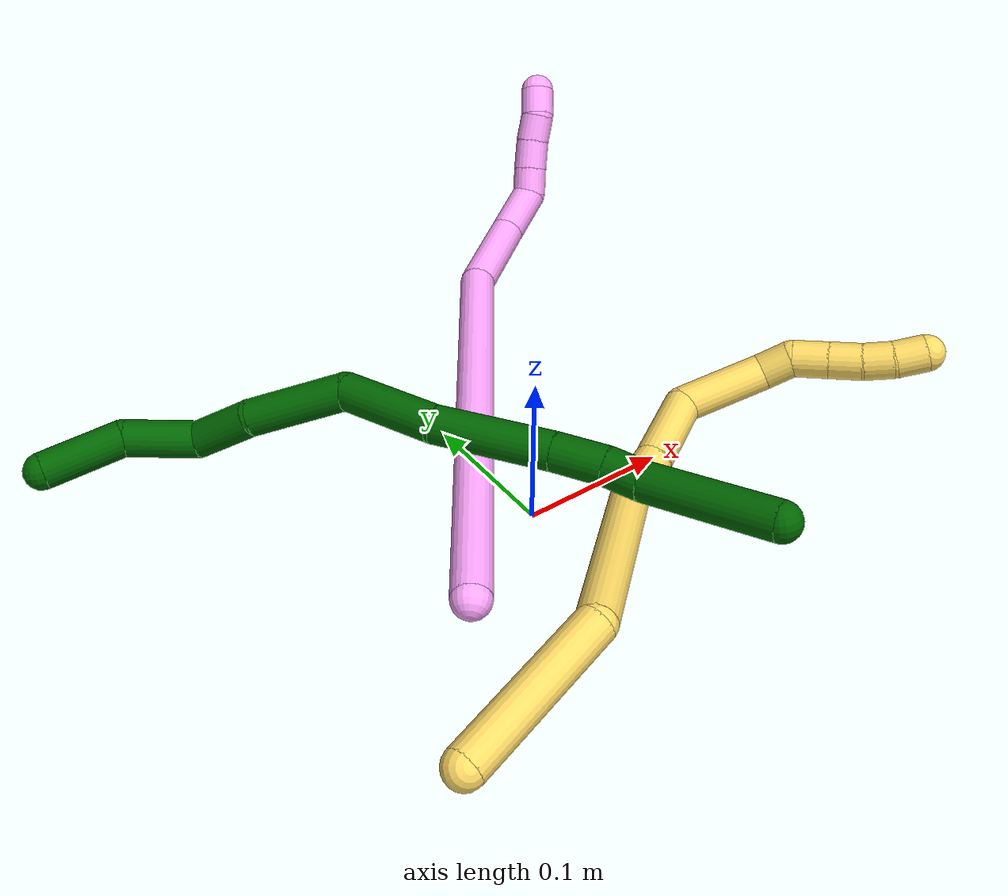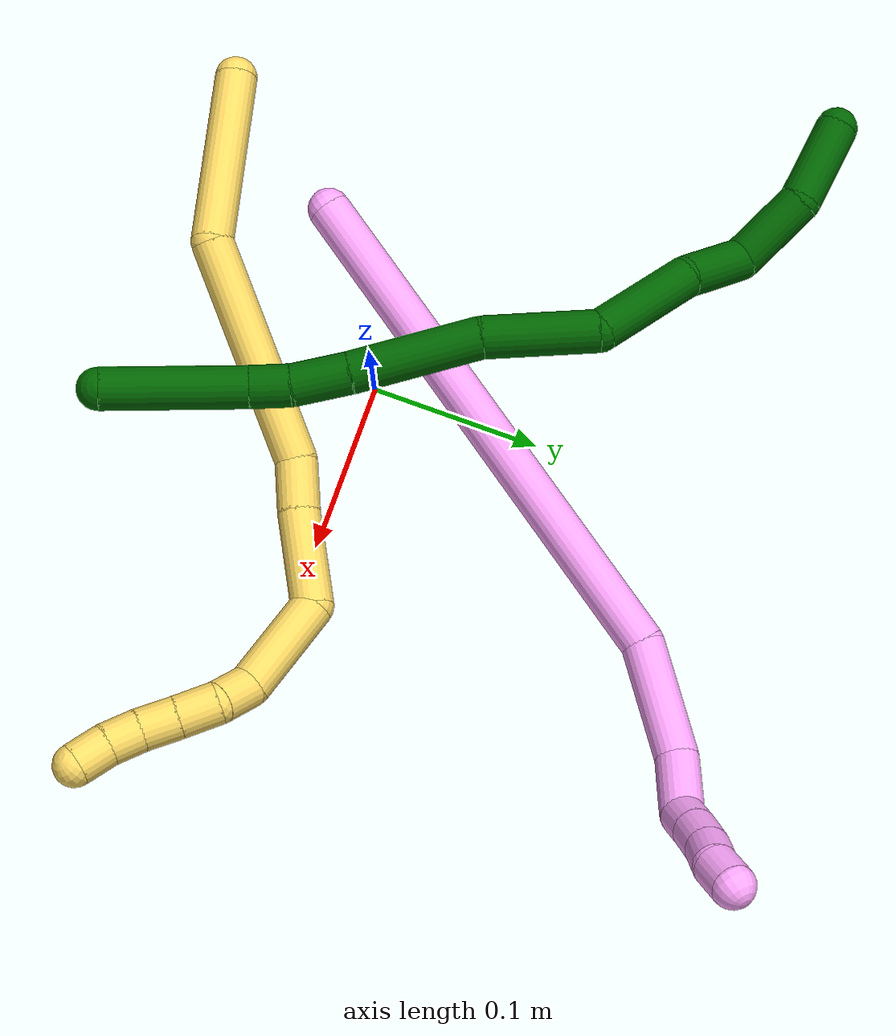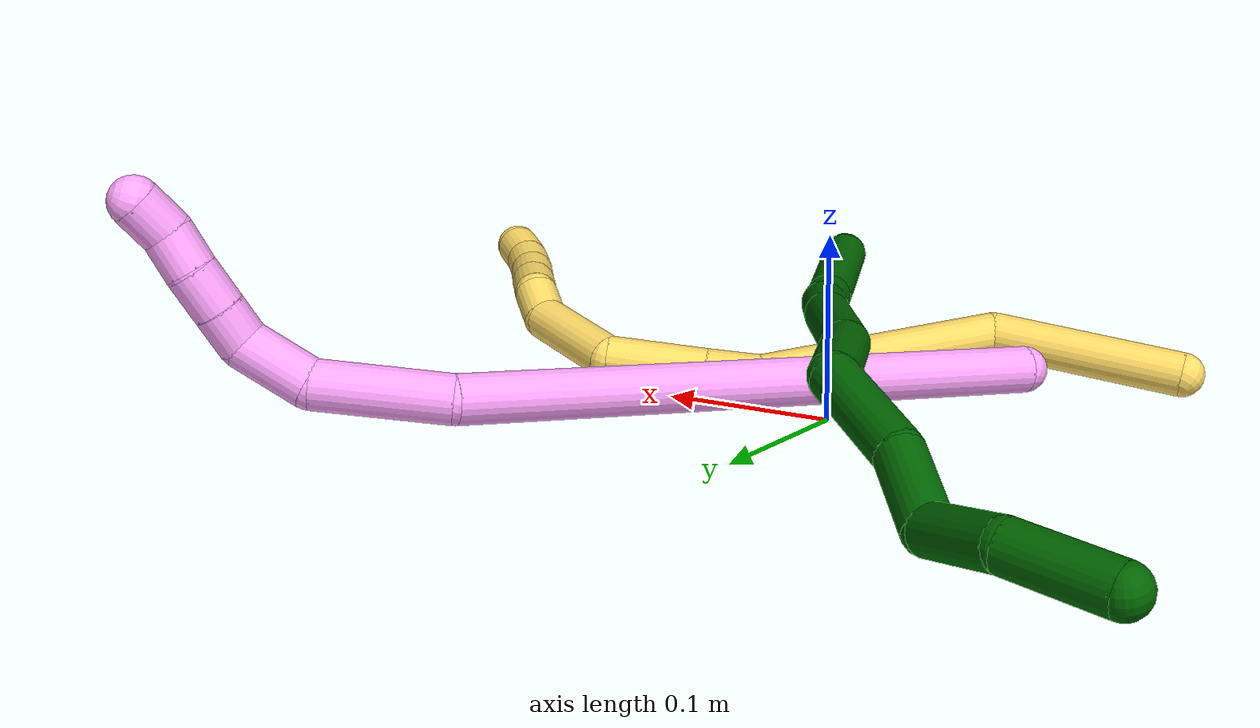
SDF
<sdf version="1.7">
 <world name="default">
  <model name="photoneo_s_sensor">
   <static>1</static>
   <pose>0 0 2 1.57079 1.57079 3.14159</pose>
   <link name="link">
    <inertial><mass>0.1</mass></inertial>
    <sensor name="sensor" type="depth">
     <update_rate>30</update_rate>
     <camera>
      <horizontal_fov>1.22</horizontal_fov>
      <image><width>1920</width><height>1200</height><format>B8G8R8</format></image>
      <clip><near>0.1</near><far>4</far></clip>
      <depth_camera><output>points</output></depth_camera>
     </camera>
     <plugin name="camera_plugin" filename="libgazebo_ros_depth_camera.so">
      <baseline>0.2</baseline>
      <alwaysOn>1</alwaysOn>
      <updateRate>0.0</updateRate>
      <cameraName>camera_ir</cameraName>
      <imageTopicName>/camera/color/image_raw</imageTopicName>
      <cameraInfoTopicName>/camera/color/camera_info</cameraInfoTopicName>
      <depthImageTopicName>/camera/depth/image_raw</depthImageTopicName>
      <depthImageCameraInfoTopicName>/camera/depth/camera_info</depthImageCameraInfoTopicName>
      <pointCloudTopicName>/camera/depth/points</pointCloudTopicName>
      <frameName>fr_optical</frameName>
      <pointCloudCutoff>0.1</pointCloudCutoff>
      <pointCloudCutoffMax>2.0</pointCloudCutoffMax>
      <distortionK1>0</distortionK1>
      <distortionK2>0</distortionK2>
      <distortionK3>0</distortionK3>
      <distortionT1>0</distortionT1>
      <distortionT2>0</distortionT2>
      <CxPrime>0</CxPrime>
      <Cx>0</Cx>
      <Cy>0</Cy>
      <focalLength>0</focalLength>
      <hackBaseline>0</hackBaseline>
     </plugin>
    </sensor>
   </link>
  </model>
  <model name="bin">
   <static>1</static>
   <link name="bottom">
    <collision name="collision-bottom">
     <pose>0 0 -0.01 0 -0 0</pose>
     <geometry><box><size>0.8 0.6 0.02</size></box></geometry>
     <surface>
      <friction><ode><mu>100</mu><mu2>100</mu2></ode></friction>
      <contact><collide_bitmask>65535</collide_bitmask></contact>
     </surface>
    </collision>
   </link>
   <link name="west_wall">
    <collision name="collision-west_wall">
     <pose>-0.41 0 0.1 0 -0 0</pose>
     <geometry><box><size>0.02 0.6 0.2</size></box></geometry>
     <surface>
      <friction><ode><mu>100</mu><mu2>100</mu2></ode></friction>
      <contact><collide_bitmask>65535</collide_bitmask></contact>
     </surface>
    </collision>
   </link>
   <link name="east_wall">
    <collision name="collision-east_wall">
     <pose>0.41 0 0.1 0 -0 0</pose>
     <geometry><box><size>0.02 0.6 0.2</size></box></geometry>
     <surface>
      <friction><ode><mu>100</mu><mu2>100</mu2></ode></friction>
      <contact><collide_bitmask>65535</collide_bitmask></contact>
     </surface>
    </collision>
   </link>
   <link name="south_wall">
    <collision name="collision-south_wall">
     <pose>0 -0.31 0.1 0 -0 0</pose>
     <geometry><box><size>0.8 0.02 0.2</size></box></geometry>
     <surface>
      <friction><ode><mu>100</mu><mu2>100</mu2></ode></friction>
      <contact><collide_bitmask>65535</collide_bitmask></contact>
     </surface>
    </collision>
   </link>
   <link name="north_wall">
    <collision name="collision-north_wall">
     <pose>0 0.31 0.1 0 -0 0</pose>
     <geometry><box><size>0.8 0.02 0.2</size></box></geometry>
     <surface>
      <friction><ode><mu>100</mu><mu2>100</mu2></ode></friction>
      <contact><collide_bitmask>65535</collide_bitmask></contact>
     </surface>
    </collision>
   </link>
  </model>
  <model name="4">
   <static>0</static>
   <link name="4">
    <collision name="collision-cylinder-e_1_1_4">
     <pose>0.019927 0.047858 0.147684 -0.313379 0.127658 -0.020195</pose>
     <geometry><cylinder><radius>0.0125</radius><length>0.313037</length></cylinder></geometry>
     <surface>
      <friction><ode><mu>1.16</mu><mu2>1.16</mu2><slip1>0</slip1><slip2>0</slip2></ode></friction>
      <contact><ode><kp>1e+06</kp><kd>1</kd><max_vel>0</max_vel><min_depth>0.001</min_depth></ode></contact>
     </surface>
    </collision>
    <visual name="visual-cylinder-e_1_1_4">
     <pose>0.019927 0.047858 0.147684 -0.313379 0.127658 -0.020195</pose>
     <geometry><cylinder><radius>0.0125</radius><length>0.313037</length></cylinder></geometry>
     <material><ambient>1 0.65098 0.996078 1</ambient></material>
    </visual>
    <collision name="collision-cylinder-e_2_4_5">
     <pose>0.051668 0.096929 0.326991 -0.038335 0.357299 -0.006923</pose>
     <geometry><cylinder><radius>0.0125</radius><length>0.06756</length></cylinder></geometry>
     <surface>
      <friction><ode><mu>1.16</mu><mu2>1.16</mu2><slip1>0</slip1><slip2>0</slip2></ode></friction>
      <contact><ode><kp>1e+06</kp><kd>1</kd><max_vel>0</max_vel><min_depth>0.001</min_depth></ode></contact>
     </surface>
    </collision>
    <visual name="visual-cylinder-e_2_4_5">
     <pose>0.051668 0.096929 0.326991 -0.038335 0.357299 -0.006923</pose>
     <geometry><cylinder><radius>0.0125</radius><length>0.06756</length></cylinder></geometry>
     <material><ambient>1 0.65098 0.996078 1</ambient></material>
    </visual>
    <collision name="collision-cylinder-e_3_5_6">
     <pose>0.067777 0.090882 0.375006 0.416909 0.235115 0.049953</pose>
     <geometry><cylinder><radius>0.0125</radius><length>0.036869</length></cylinder></geometry>
     <surface>
      <friction><ode><mu>1.16</mu><mu2>1.16</mu2><slip1>0</slip1><slip2>0</slip2></ode></friction>
      <contact><ode><kp>1e+06</kp><kd>1</kd><max_vel>0</max_vel><min_depth>0.001</min_depth></ode></contact>
     </surface>
    </collision>
    <visual name="visual-cylinder-e_3_5_6">
     <pose>0.067777 0.090882 0.375006 0.416909 0.235115 0.049953</pose>
     <geometry><cylinder><radius>0.0125</radius><length>0.036869</length></cylinder></geometry>
     <material><ambient>1 0.65098 0.996078 1</ambient></material>
    </visual>
    <collision name="collision-cylinder-e_4_6_7">
     <pose>0.068544 0.07868 0.399373 0.554907 -0.359551 -0.103425</pose>
     <geometry><cylinder><radius>0.0125</radius><length>0.020047</length></cylinder></geometry>
     <surface>
      <friction><ode><mu>1.16</mu><mu2>1.16</mu2><slip1>0</slip1><slip2>0</slip2></ode></friction>
      <contact><ode><kp>1e+06</kp><kd>1</kd><max_vel>0</max_vel><min_depth>0.001</min_depth></ode></contact>
     </surface>
    </collision>
    <visual name="visual-cylinder-e_4_6_7">
     <pose>0.068544 0.07868 0.399373 0.554907 -0.359551 -0.103425</pose>
     <geometry><cylinder><radius>0.0125</radius><length>0.020047</length></cylinder></geometry>
     <material><ambient>1 0.65098 0.996078 1</ambient></material>
    </visual>
    <collision name="collision-cylinder-e_5_7_8">
     <pose>0.061584 0.068122 0.416008 0.575177 -0.321149 -0.095744</pose>
     <geometry><cylinder><radius>0.0125</radius><length>0.021755</length></cylinder></geometry>
     <surface>
      <friction><ode><mu>1.16</mu><mu2>1.16</mu2><slip1>0</slip1><slip2>0</slip2></ode></friction>
      <contact><ode><kp>1e+06</kp><kd>1</kd><max_vel>0</max_vel><min_depth>0.001</min_depth></ode></contact>
     </surface>
    </collision>
    <visual name="visual-cylinder-e_5_7_8">
     <pose>0.061584 0.068122 0.416008 0.575177 -0.321149 -0.095744</pose>
     <geometry><cylinder><radius>0.0125</radius><length>0.021755</length></cylinder></geometry>
     <material><ambient>1 0.65098 0.996078 1</ambient></material>
    </visual>
    <collision name="collision-cylinder-e_6_8_9">
     <pose>0.055584 0.056301 0.432296 0.682983 -0.255249 -0.091152</pose>
     <geometry><cylinder><radius>0.0125</radius><length>0.020327</length></cylinder></geometry>
     <surface>
      <friction><ode><mu>1.16</mu><mu2>1.16</mu2><slip1>0</slip1><slip2>0</slip2></ode></friction>
      <contact><ode><kp>1e+06</kp><kd>1</kd><max_vel>0</max_vel><min_depth>0.001</min_depth></ode></contact>
     </surface>
    </collision>
    <visual name="visual-cylinder-e_6_8_9">
     <pose>0.055584 0.056301 0.432296 0.682983 -0.255249 -0.091152</pose>
     <geometry><cylinder><radius>0.0125</radius><length>0.020327</length></cylinder></geometry>
     <material><ambient>1 0.65098 0.996078 1</ambient></material>
    </visual>
    <collision name="collision-cylinder-e_7_9_2">
     <pose>0.049908 0.046593 0.448989 0.368672 -0.309781 -0.058209</pose>
     <geometry><cylinder><radius>0.0125</radius><length>0.020406</length></cylinder></geometry>
     <surface>
      <friction><ode><mu>1.16</mu><mu2>1.16</mu2><slip1>0</slip1><slip2>0</slip2></ode></friction>
      <contact><ode><kp>1e+06</kp><kd>1</kd><max_vel>0</max_vel><min_depth>0.001</min_depth></ode></contact>
     </surface>
    </collision>
    <visual name="visual-cylinder-e_7_9_2">
     <pose>0.049908 0.046593 0.448989 0.368672 -0.309781 -0.058209</pose>
     <geometry><cylinder><radius>0.0125</radius><length>0.020406</length></cylinder></geometry>
     <material><ambient>1 0.65098 0.996078 1</ambient></material>
    </visual>
    <collision name="collision-sphere-2">
     <pose>0.046797 0.043091 0.458054 0 -0 0</pose>
     <geometry><sphere><radius>0.0125</radius></sphere></geometry>
     <surface>
      <friction><ode><mu>1.16</mu><mu2>1.16</mu2><slip1>0</slip1><slip2>0</slip2></ode></friction>
      <contact><ode><kp>1e+06</kp><kd>1</kd><max_vel>0</max_vel><min_depth>0.001</min_depth></ode></contact>
     </surface>
    </collision>
    <visual name="visual-sphere-2">
     <pose>0.046797 0.043091 0.458054 0 -0 0</pose>
     <geometry><sphere><radius>0.0125</radius></sphere></geometry>
     <material><ambient>1 0.65098 0.996078 1</ambient></material>
    </visual>
    <collision name="collision-sphere-9">
     <pose>0.053018 0.050095 0.439924 0 -0 0</pose>
     <geometry><sphere><radius>0.0125</radius></sphere></geometry>
     <surface>
      <friction><ode><mu>1.16</mu><mu2>1.16</mu2><slip1>0</slip1><slip2>0</slip2></ode></friction>
      <contact><ode><kp>1e+06</kp><kd>1</kd><max_vel>0</max_vel><min_depth>0.001</min_depth></ode></contact>
     </surface>
    </collision>
    <visual name="visual-sphere-9">
     <pose>0.053018 0.050095 0.439924 0 -0 0</pose>
     <geometry><sphere><radius>0.0125</radius></sphere></geometry>
     <material><ambient>1 0.65098 0.996078 1</ambient></material>
    </visual>
    <collision name="collision-sphere-4">
     <pose>0.039853 0.095716 0.295368 0 -0 0</pose>
     <geometry><sphere><radius>0.0125</radius></sphere></geometry>
     <surface>
      <friction><ode><mu>1.16</mu><mu2>1.16</mu2><slip1>0</slip1><slip2>0</slip2></ode></friction>
      <contact><ode><kp>1e+06</kp><kd>1</kd><max_vel>0</max_vel><min_depth>0.001</min_depth></ode></contact>
     </surface>
    </collision>
    <visual name="visual-sphere-4">
     <pose>0.039853 0.095716 0.295368 0 -0 0</pose>
     <geometry><sphere><radius>0.0125</radius></sphere></geometry>
     <material><ambient>1 0.65098 0.996078 1</ambient></material>
    </visual>
    <collision name="collision-sphere-1">
     <geometry><sphere><radius>0.0125</radius></sphere></geometry>
     <surface>
      <friction><ode><mu>1.16</mu><mu2>1.16</mu2><slip1>0</slip1><slip2>0</slip2></ode></friction>
      <contact><ode><kp>1e+06</kp><kd>1</kd><max_vel>0</max_vel><min_depth>0.001</min_depth></ode></contact>
     </surface>
    </collision>
    <visual name="visual-sphere-1">
     <geometry><sphere><radius>0.0125</radius></sphere></geometry>
     <material><ambient>1 0.65098 0.996078 1</ambient></material>
    </visual>
    <collision name="collision-sphere-8">
     <pose>0.05815 0.062507 0.424668 0 -0 0</pose>
     <geometry><sphere><radius>0.0125</radius></sphere></geometry>
     <surface>
      <friction><ode><mu>1.16</mu><mu2>1.16</mu2><slip1>0</slip1><slip2>0</slip2></ode></friction>
      <contact><ode><kp>1e+06</kp><kd>1</kd><max_vel>0</max_vel><min_depth>0.001</min_depth></ode></contact>
     </surface>
    </collision>
    <visual name="visual-sphere-8">
     <pose>0.05815 0.062507 0.424668 0 -0 0</pose>
     <geometry><sphere><radius>0.0125</radius></sphere></geometry>
     <material><ambient>1 0.65098 0.996078 1</ambient></material>
    </visual>
    <collision name="collision-sphere-5">
     <pose>0.063482 0.098142 0.358614 0 -0 0</pose>
     <geometry><sphere><radius>0.0125</radius></sphere></geometry>
     <surface>
      <friction><ode><mu>1.16</mu><mu2>1.16</mu2><slip1>0</slip1><slip2>0</slip2></ode></friction>
      <contact><ode><kp>1e+06</kp><kd>1</kd><max_vel>0</max_vel><min_depth>0.001</min_depth></ode></contact>
     </surface>
    </collision>
    <visual name="visual-sphere-5">
     <pose>0.063482 0.098142 0.358614 0 -0 0</pose>
     <geometry><sphere><radius>0.0125</radius></sphere></geometry>
     <material><ambient>1 0.65098 0.996078 1</ambient></material>
    </visual>
    <collision name="collision-sphere-6">
     <pose>0.072071 0.083623 0.391398 0 -0 0</pose>
     <geometry><sphere><radius>0.0125</radius></sphere></geometry>
     <surface>
      <friction><ode><mu>1.16</mu><mu2>1.16</mu2><slip1>0</slip1><slip2>0</slip2></ode></friction>
      <contact><ode><kp>1e+06</kp><kd>1</kd><max_vel>0</max_vel><min_depth>0.001</min_depth></ode></contact>
     </surface>
    </collision>
    <visual name="visual-sphere-6">
     <pose>0.072071 0.083623 0.391398 0 -0 0</pose>
     <geometry><sphere><radius>0.0125</radius></sphere></geometry>
     <material><ambient>1 0.65098 0.996078 1</ambient></material>
    </visual>
    <collision name="collision-sphere-7">
     <pose>0.065017 0.073736 0.407347 0 -0 0</pose>
     <geometry><sphere><radius>0.0125</radius></sphere></geometry>
     <surface>
      <friction><ode><mu>1.16</mu><mu2>1.16</mu2><slip1>0</slip1><slip2>0</slip2></ode></friction>
      <contact><ode><kp>1e+06</kp><kd>1</kd><max_vel>0</max_vel><min_depth>0.001</min_depth></ode></contact>
     </surface>
    </collision>
    <visual name="visual-sphere-7">
     <pose>0.065017 0.073736 0.407347 0 -0 0</pose>
     <geometry><sphere><radius>0.0125</radius></sphere></geometry>
     <material><ambient>1 0.65098 0.996078 1</ambient></material>
    </visual>
    <inertial>
     <pose>0.034179 0.06007 0.234307 0 -0 0</pose>
     <mass>0.5</mass>
     <inertia>
      <ixx>0.002537</ixx>
      <ixy>0</ixy>
      <ixz>0</ixz>
      <iyy>0.002435</iyy>
      <iyz>0</iyz>
      <izz>-0.001082</izz>
     </inertia>
    </inertial>
   </link>
   <pose>-0.086471 -0.059831 0.027205 -1.12299 0.572987 -0.4327</pose>
  </model>
  <model name="5">
   <static>0</static>
   <link name="5">
    <collision name="collision-cylinder-e_1_1_4">
     <pose>0.038087 0.037092 0.007203 -1.37899 0.789371 -0.661629</pose>
     <geometry><cylinder><radius>0.0125</radius><length>0.1073</length></cylinder></geometry>
     <surface>
      <friction><ode><mu>1.16</mu><mu2>1.16</mu2><slip1>0</slip1><slip2>0</slip2></ode></friction>
      <contact><ode><kp>1e+06</kp><kd>1</kd><max_vel>0</max_vel><min_depth>0.001</min_depth></ode></contact>
     </surface>
    </collision>
    <visual name="visual-cylinder-e_1_1_4">
     <pose>0.038087 0.037092 0.007203 -1.37899 0.789371 -0.661629</pose>
     <geometry><cylinder><radius>0.0125</radius><length>0.1073</length></cylinder></geometry>
     <material><ambient>1 0.858824 0.4 1</ambient></material>
    </visual>
    <collision name="collision-cylinder-e_2_4_5">
     <pose>0.122944 0.10182 0.055682 -0.58999 0.75531 -0.239923</pose>
     <geometry><cylinder><radius>0.0125</radius><length>0.136454</length></cylinder></geometry>
     <surface>
      <friction><ode><mu>1.16</mu><mu2>1.16</mu2><slip1>0</slip1><slip2>0</slip2></ode></friction>
      <contact><ode><kp>1e+06</kp><kd>1</kd><max_vel>0</max_vel><min_depth>0.001</min_depth></ode></contact>
     </surface>
    </collision>
    <visual name="visual-cylinder-e_2_4_5">
     <pose>0.122944 0.10182 0.055682 -0.58999 0.75531 -0.239923</pose>
     <geometry><cylinder><radius>0.0125</radius><length>0.136454</length></cylinder></geometry>
     <material><ambient>1 0.858824 0.4 1</ambient></material>
    </visual>
    <collision name="collision-cylinder-e_3_5_6">
     <pose>0.18139 0.138782 0.101407 -1.12556 0.84636 -0.553649</pose>
     <geometry><cylinder><radius>0.0125</radius><length>0.031183</length></cylinder></geometry>
     <surface>
      <friction><ode><mu>1.16</mu><mu2>1.16</mu2><slip1>0</slip1><slip2>0</slip2></ode></friction>
      <contact><ode><kp>1e+06</kp><kd>1</kd><max_vel>0</max_vel><min_depth>0.001</min_depth></ode></contact>
     </surface>
    </collision>
    <visual name="visual-cylinder-e_3_5_6">
     <pose>0.18139 0.138782 0.101407 -1.12556 0.84636 -0.553649</pose>
     <geometry><cylinder><radius>0.0125</radius><length>0.031183</length></cylinder></geometry>
     <material><ambient>1 0.858824 0.4 1</ambient></material>
    </visual>
    <collision name="collision-cylinder-e_4_6_7">
     <pose>0.215639 0.162761 0.114413 -1.04235 0.926184 -0.558351</pose>
     <geometry><cylinder><radius>0.0125</radius><length>0.05648</length></cylinder></geometry>
     <surface>
      <friction><ode><mu>1.16</mu><mu2>1.16</mu2><slip1>0</slip1><slip2>0</slip2></ode></friction>
      <contact><ode><kp>1e+06</kp><kd>1</kd><max_vel>0</max_vel><min_depth>0.001</min_depth></ode></contact>
     </surface>
    </collision>
    <visual name="visual-cylinder-e_4_6_7">
     <pose>0.215639 0.162761 0.114413 -1.04235 0.926184 -0.558351</pose>
     <geometry><cylinder><radius>0.0125</radius><length>0.05648</length></cylinder></geometry>
     <material><ambient>1 0.858824 0.4 1</ambient></material>
    </visual>
    <collision name="collision-cylinder-e_5_7_8">
     <pose>0.250812 0.203207 0.11519 -1.86372 0.437479 -0.581503</pose>
     <geometry><cylinder><radius>0.0125</radius><length>0.05948</length></cylinder></geometry>
     <surface>
      <friction><ode><mu>1.16</mu><mu2>1.16</mu2><slip1>0</slip1><slip2>0</slip2></ode></friction>
      <contact><ode><kp>1e+06</kp><kd>1</kd><max_vel>0</max_vel><min_depth>0.001</min_depth></ode></contact>
     </surface>
    </collision>
    <visual name="visual-cylinder-e_5_7_8">
     <pose>0.250812 0.203207 0.11519 -1.86372 0.437479 -0.581503</pose>
     <geometry><cylinder><radius>0.0125</radius><length>0.05948</length></cylinder></geometry>
     <material><ambient>1 0.858824 0.4 1</ambient></material>
    </visual>
    <collision name="collision-cylinder-e_6_8_9">
     <pose>0.267107 0.23658 0.09995 -2.34823 0.334343 -0.765916</pose>
     <geometry><cylinder><radius>0.0125</radius><length>0.022521</length></cylinder></geometry>
     <surface>
      <friction><ode><mu>1.16</mu><mu2>1.16</mu2><slip1>0</slip1><slip2>0</slip2></ode></friction>
      <contact><ode><kp>1e+06</kp><kd>1</kd><max_vel>0</max_vel><min_depth>0.001</min_depth></ode></contact>
     </surface>
    </collision>
    <visual name="visual-cylinder-e_6_8_9">
     <pose>0.267107 0.23658 0.09995 -2.34823 0.334343 -0.765916</pose>
     <geometry><cylinder><radius>0.0125</radius><length>0.022521</length></cylinder></geometry>
     <material><ambient>1 0.858824 0.4 1</ambient></material>
    </visual>
    <collision name="collision-cylinder-e_7_9_10">
     <pose>0.269717 0.25439 0.086423 -2.10607 -0.090943 0.159436</pose>
     <geometry><cylinder><radius>0.0125</radius><length>0.023885</length></cylinder></geometry>
     <surface>
      <friction><ode><mu>1.16</mu><mu2>1.16</mu2><slip1>0</slip1><slip2>0</slip2></ode></friction>
      <contact><ode><kp>1e+06</kp><kd>1</kd><max_vel>0</max_vel><min_depth>0.001</min_depth></ode></contact>
     </surface>
    </collision>
    <visual name="visual-cylinder-e_7_9_10">
     <pose>0.269717 0.25439 0.086423 -2.10607 -0.090943 0.159436</pose>
     <geometry><cylinder><radius>0.0125</radius><length>0.023885</length></cylinder></geometry>
     <material><ambient>1 0.858824 0.4 1</ambient></material>
    </visual>
    <collision name="collision-cylinder-e_8_10_11">
     <pose>0.267527 0.273845 0.074606 -2.12819 -0.101368 0.182284</pose>
     <geometry><cylinder><radius>0.0125</radius><length>0.021854</length></cylinder></geometry>
     <surface>
      <friction><ode><mu>1.16</mu><mu2>1.16</mu2><slip1>0</slip1><slip2>0</slip2></ode></friction>
      <contact><ode><kp>1e+06</kp><kd>1</kd><max_vel>0</max_vel><min_depth>0.001</min_depth></ode></contact>
     </surface>
    </collision>
    <visual name="visual-cylinder-e_8_10_11">
     <pose>0.267527 0.273845 0.074606 -2.12819 -0.101368 0.182284</pose>
     <geometry><cylinder><radius>0.0125</radius><length>0.021854</length></cylinder></geometry>
     <material><ambient>1 0.858824 0.4 1</ambient></material>
    </visual>
    <collision name="collision-cylinder-e_9_11_12">
     <pose>0.266675 0.29154 0.063521 -2.13286 0.025358 -0.045934</pose>
     <geometry><cylinder><radius>0.0125</radius><length>0.020025</length></cylinder></geometry>
     <surface>
      <friction><ode><mu>1.16</mu><mu2>1.16</mu2><slip1>0</slip1><slip2>0</slip2></ode></friction>
      <contact><ode><kp>1e+06</kp><kd>1</kd><max_vel>0</max_vel><min_depth>0.001</min_depth></ode></contact>
     </surface>
    </collision>
    <visual name="visual-cylinder-e_9_11_12">
     <pose>0.266675 0.29154 0.063521 -2.13286 0.025358 -0.045934</pose>
     <geometry><cylinder><radius>0.0125</radius><length>0.020025</length></cylinder></geometry>
     <material><ambient>1 0.858824 0.4 1</ambient></material>
    </visual>
    <collision name="collision-cylinder-e_10_12_2">
     <pose>0.268943 0.308878 0.053123 -2.0896 0.194655 -0.333239</pose>
     <geometry><cylinder><radius>0.0125</radius><length>0.02082</length></cylinder></geometry>
     <surface>
      <friction><ode><mu>1.16</mu><mu2>1.16</mu2><slip1>0</slip1><slip2>0</slip2></ode></friction>
      <contact><ode><kp>1e+06</kp><kd>1</kd><max_vel>0</max_vel><min_depth>0.001</min_depth></ode></contact>
     </surface>
    </collision>
    <visual name="visual-cylinder-e_10_12_2">
     <pose>0.268943 0.308878 0.053123 -2.0896 0.194655 -0.333239</pose>
     <geometry><cylinder><radius>0.0125</radius><length>0.02082</length></cylinder></geometry>
     <material><ambient>1 0.858824 0.4 1</ambient></material>
    </visual>
    <collision name="collision-sphere-2">
     <pose>0.270956 0.317748 0.048059 0 -0 0</pose>
     <geometry><sphere><radius>0.0125</radius></sphere></geometry>
     <surface>
      <friction><ode><mu>1.16</mu><mu2>1.16</mu2><slip1>0</slip1><slip2>0</slip2></ode></friction>
      <contact><ode><kp>1e+06</kp><kd>1</kd><max_vel>0</max_vel><min_depth>0.001</min_depth></ode></contact>
     </surface>
    </collision>
    <visual name="visual-sphere-2">
     <pose>0.270956 0.317748 0.048059 0 -0 0</pose>
     <geometry><sphere><radius>0.0125</radius></sphere></geometry>
     <material><ambient>1 0.858824 0.4 1</ambient></material>
    </visual>
    <collision name="collision-sphere-12">
     <pose>0.266929 0.300009 0.058187 0 -0 0</pose>
     <geometry><sphere><radius>0.0125</radius></sphere></geometry>
     <surface>
      <friction><ode><mu>1.16</mu><mu2>1.16</mu2><slip1>0</slip1><slip2>0</slip2></ode></friction>
      <contact><ode><kp>1e+06</kp><kd>1</kd><max_vel>0</max_vel><min_depth>0.001</min_depth></ode></contact>
     </surface>
    </collision>
    <visual name="visual-sphere-12">
     <pose>0.266929 0.300009 0.058187 0 -0 0</pose>
     <geometry><sphere><radius>0.0125</radius></sphere></geometry>
     <material><ambient>1 0.858824 0.4 1</ambient></material>
    </visual>
    <collision name="collision-sphere-11">
     <pose>0.266421 0.28307 0.068856 0 -0 0</pose>
     <geometry><sphere><radius>0.0125</radius></sphere></geometry>
     <surface>
      <friction><ode><mu>1.16</mu><mu2>1.16</mu2><slip1>0</slip1><slip2>0</slip2></ode></friction>
      <contact><ode><kp>1e+06</kp><kd>1</kd><max_vel>0</max_vel><min_depth>0.001</min_depth></ode></contact>
     </surface>
    </collision>
    <visual name="visual-sphere-11">
     <pose>0.266421 0.28307 0.068856 0 -0 0</pose>
     <geometry><sphere><radius>0.0125</radius></sphere></geometry>
     <material><ambient>1 0.858824 0.4 1</ambient></material>
    </visual>
    <collision name="collision-sphere-10">
     <pose>0.268633 0.26462 0.080356 0 -0 0</pose>
     <geometry><sphere><radius>0.0125</radius></sphere></geometry>
     <surface>
      <friction><ode><mu>1.16</mu><mu2>1.16</mu2><slip1>0</slip1><slip2>0</slip2></ode></friction>
      <contact><ode><kp>1e+06</kp><kd>1</kd><max_vel>0</max_vel><min_depth>0.001</min_depth></ode></contact>
     </surface>
    </collision>
    <visual name="visual-sphere-10">
     <pose>0.268633 0.26462 0.080356 0 -0 0</pose>
     <geometry><sphere><radius>0.0125</radius></sphere></geometry>
     <material><ambient>1 0.858824 0.4 1</ambient></material>
    </visual>
    <collision name="collision-sphere-9">
     <pose>0.270802 0.244161 0.092489 0 -0 0</pose>
     <geometry><sphere><radius>0.0125</radius></sphere></geometry>
     <surface>
      <friction><ode><mu>1.16</mu><mu2>1.16</mu2><slip1>0</slip1><slip2>0</slip2></ode></friction>
      <contact><ode><kp>1e+06</kp><kd>1</kd><max_vel>0</max_vel><min_depth>0.001</min_depth></ode></contact>
     </surface>
    </collision>
    <visual name="visual-sphere-9">
     <pose>0.270802 0.244161 0.092489 0 -0 0</pose>
     <geometry><sphere><radius>0.0125</radius></sphere></geometry>
     <material><ambient>1 0.858824 0.4 1</ambient></material>
    </visual>
    <collision name="collision-sphere-4">
     <pose>0.076173 0.074185 0.014406 0 -0 0</pose>
     <geometry><sphere><radius>0.0125</radius></sphere></geometry>
     <surface>
      <friction><ode><mu>1.16</mu><mu2>1.16</mu2><slip1>0</slip1><slip2>0</slip2></ode></friction>
      <contact><ode><kp>1e+06</kp><kd>1</kd><max_vel>0</max_vel><min_depth>0.001</min_depth></ode></contact>
     </surface>
    </collision>
    <visual name="visual-sphere-4">
     <pose>0.076173 0.074185 0.014406 0 -0 0</pose>
     <geometry><sphere><radius>0.0125</radius></sphere></geometry>
     <material><ambient>1 0.858824 0.4 1</ambient></material>
    </visual>
    <collision name="collision-sphere-1">
     <geometry><sphere><radius>0.0125</radius></sphere></geometry>
     <surface>
      <friction><ode><mu>1.16</mu><mu2>1.16</mu2><slip1>0</slip1><slip2>0</slip2></ode></friction>
      <contact><ode><kp>1e+06</kp><kd>1</kd><max_vel>0</max_vel><min_depth>0.001</min_depth></ode></contact>
     </surface>
    </collision>
    <visual name="visual-sphere-1">
     <geometry><sphere><radius>0.0125</radius></sphere></geometry>
     <material><ambient>1 0.858824 0.4 1</ambient></material>
    </visual>
    <collision name="collision-sphere-8">
     <pose>0.263412 0.228999 0.107411 0 -0 0</pose>
     <geometry><sphere><radius>0.0125</radius></sphere></geometry>
     <surface>
      <friction><ode><mu>1.16</mu><mu2>1.16</mu2><slip1>0</slip1><slip2>0</slip2></ode></friction>
      <contact><ode><kp>1e+06</kp><kd>1</kd><max_vel>0</max_vel><min_depth>0.001</min_depth></ode></contact>
     </surface>
    </collision>
    <visual name="visual-sphere-8">
     <pose>0.263412 0.228999 0.107411 0 -0 0</pose>
     <geometry><sphere><radius>0.0125</radius></sphere></geometry>
     <material><ambient>1 0.858824 0.4 1</ambient></material>
    </visual>
    <collision name="collision-sphere-5">
     <pose>0.169714 0.129456 0.096957 0 -0 0</pose>
     <geometry><sphere><radius>0.0125</radius></sphere></geometry>
     <surface>
      <friction><ode><mu>1.16</mu><mu2>1.16</mu2><slip1>0</slip1><slip2>0</slip2></ode></friction>
      <contact><ode><kp>1e+06</kp><kd>1</kd><max_vel>0</max_vel><min_depth>0.001</min_depth></ode></contact>
     </surface>
    </collision>
    <visual name="visual-sphere-5">
     <pose>0.169714 0.129456 0.096957 0 -0 0</pose>
     <geometry><sphere><radius>0.0125</radius></sphere></geometry>
     <material><ambient>1 0.858824 0.4 1</ambient></material>
    </visual>
    <collision name="collision-sphere-6">
     <pose>0.193066 0.148107 0.105857 0 -0 0</pose>
     <geometry><sphere><radius>0.0125</radius></sphere></geometry>
     <surface>
      <friction><ode><mu>1.16</mu><mu2>1.16</mu2><slip1>0</slip1><slip2>0</slip2></ode></friction>
      <contact><ode><kp>1e+06</kp><kd>1</kd><max_vel>0</max_vel><min_depth>0.001</min_depth></ode></contact>
     </surface>
    </collision>
    <visual name="visual-sphere-6">
     <pose>0.193066 0.148107 0.105857 0 -0 0</pose>
     <geometry><sphere><radius>0.0125</radius></sphere></geometry>
     <material><ambient>1 0.858824 0.4 1</ambient></material>
    </visual>
    <collision name="collision-sphere-7">
     <pose>0.238213 0.177416 0.122969 0 -0 0</pose>
     <geometry><sphere><radius>0.0125</radius></sphere></geometry>
     <surface>
      <friction><ode><mu>1.16</mu><mu2>1.16</mu2><slip1>0</slip1><slip2>0</slip2></ode></friction>
      <contact><ode><kp>1e+06</kp><kd>1</kd><max_vel>0</max_vel><min_depth>0.001</min_depth></ode></contact>
     </surface>
    </collision>
    <visual name="visual-sphere-7">
     <pose>0.238213 0.177416 0.122969 0 -0 0</pose>
     <geometry><sphere><radius>0.0125</radius></sphere></geometry>
     <material><ambient>1 0.858824 0.4 1</ambient></material>
    </visual>
    <inertial>
     <pose>0.16572 0.146276 0.06634 0 -0 0</pose>
     <mass>0.5</mass>
     <inertia>
      <ixx>0.000166</ixx>
      <ixy>0</ixy>
      <ixz>0</ixz>
      <iyy>0.000192</iyy>
      <iyz>0</iyz>
      <izz>-0.000444</izz>
     </inertia>
    </inertial>
   </link>
   <pose>-0.146731 -0.14207 0.015333 -2.81464 -0.648341 0.913028</pose>
  </model>
  <model name="6">
   <static>0</static>
   <link name="6">
    <collision name="collision-cylinder-e_1_1_4">
     <pose>-0.04005 0.013057 -0.005191 -1.94918 -1.23339 1.61454</pose>
     <geometry><cylinder><radius>0.0125</radius><length>0.084887</length></cylinder></geometry>
     <surface>
      <friction><ode><mu>1.16</mu><mu2>1.16</mu2><slip1>0</slip1><slip2>0</slip2></ode></friction>
      <contact><ode><kp>1e+06</kp><kd>1</kd><max_vel>0</max_vel><min_depth>0.001</min_depth></ode></contact>
     </surface>
    </collision>
    <visual name="visual-cylinder-e_1_1_4">
     <pose>-0.04005 0.013057 -0.005191 -1.94918 -1.23339 1.61454</pose>
     <geometry><cylinder><radius>0.0125</radius><length>0.084887</length></cylinder></geometry>
     <material><ambient>0 0.392157 0.003922 1</ambient></material>
    </visual>
    <collision name="collision-cylinder-e_2_4_5">
     <pose>-0.091118 0.029867 -0.013563 -2.27386 -1.15076 1.90103</pose>
     <geometry><cylinder><radius>0.0125</radius><length>0.024134</length></cylinder></geometry>
     <surface>
      <friction><ode><mu>1.16</mu><mu2>1.16</mu2><slip1>0</slip1><slip2>0</slip2></ode></friction>
      <contact><ode><kp>1e+06</kp><kd>1</kd><max_vel>0</max_vel><min_depth>0.001</min_depth></ode></contact>
     </surface>
    </collision>
    <visual name="visual-cylinder-e_2_4_5">
     <pose>-0.091118 0.029867 -0.013563 -2.27386 -1.15076 1.90103</pose>
     <geometry><cylinder><radius>0.0125</radius><length>0.024134</length></cylinder></geometry>
     <material><ambient>0 0.392157 0.003922 1</ambient></material>
    </visual>
    <collision name="collision-cylinder-e_3_5_6">
     <pose>-0.116399 0.041548 -0.020725 -2.03612 -1.01442 1.46655</pose>
     <geometry><cylinder><radius>0.0125</radius><length>0.033593</length></cylinder></geometry>
     <surface>
      <friction><ode><mu>1.16</mu><mu2>1.16</mu2><slip1>0</slip1><slip2>0</slip2></ode></friction>
      <contact><ode><kp>1e+06</kp><kd>1</kd><max_vel>0</max_vel><min_depth>0.001</min_depth></ode></contact>
     </surface>
    </collision>
    <visual name="visual-cylinder-e_3_5_6">
     <pose>-0.116399 0.041548 -0.020725 -2.03612 -1.01442 1.46655</pose>
     <geometry><cylinder><radius>0.0125</radius><length>0.033593</length></cylinder></geometry>
     <material><ambient>0 0.392157 0.003922 1</ambient></material>
    </visual>
    <collision name="collision-cylinder-e_4_6_7">
     <pose>-0.162564 0.069582 -0.033145 -1.96824 -0.971205 1.34204</pose>
     <geometry><cylinder><radius>0.0125</radius><length>0.077285</length></cylinder></geometry>
     <surface>
      <friction><ode><mu>1.16</mu><mu2>1.16</mu2><slip1>0</slip1><slip2>0</slip2></ode></friction>
      <contact><ode><kp>1e+06</kp><kd>1</kd><max_vel>0</max_vel><min_depth>0.001</min_depth></ode></contact>
     </surface>
    </collision>
    <visual name="visual-cylinder-e_4_6_7">
     <pose>-0.162564 0.069582 -0.033145 -1.96824 -0.971205 1.34204</pose>
     <geometry><cylinder><radius>0.0125</radius><length>0.077285</length></cylinder></geometry>
     <material><ambient>0 0.392157 0.003922 1</ambient></material>
    </visual>
    <collision name="collision-cylinder-e_5_7_8">
     <pose>-0.225321 0.100855 -0.049247 -2.1721 -1.15722 1.78446</pose>
     <geometry><cylinder><radius>0.0125</radius><length>0.067394</length></cylinder></geometry>
     <surface>
      <friction><ode><mu>1.16</mu><mu2>1.16</mu2><slip1>0</slip1><slip2>0</slip2></ode></friction>
      <contact><ode><kp>1e+06</kp><kd>1</kd><max_vel>0</max_vel><min_depth>0.001</min_depth></ode></contact>
     </surface>
    </collision>
    <visual name="visual-cylinder-e_5_7_8">
     <pose>-0.225321 0.100855 -0.049247 -2.1721 -1.15722 1.78446</pose>
     <geometry><cylinder><radius>0.0125</radius><length>0.067394</length></cylinder></geometry>
     <material><ambient>0 0.392157 0.003922 1</ambient></material>
    </visual>
    <collision name="collision-cylinder-e_6_8_9">
     <pose>-0.277674 0.136704 -0.051604 -1.35912 -0.705372 0.578104</pose>
     <geometry><cylinder><radius>0.0125</radius><length>0.066316</length></cylinder></geometry>
     <surface>
      <friction><ode><mu>1.16</mu><mu2>1.16</mu2><slip1>0</slip1><slip2>0</slip2></ode></friction>
      <contact><ode><kp>1e+06</kp><kd>1</kd><max_vel>0</max_vel><min_depth>0.001</min_depth></ode></contact>
     </surface>
    </collision>
    <visual name="visual-cylinder-e_6_8_9">
     <pose>-0.277674 0.136704 -0.051604 -1.35912 -0.705372 0.578104</pose>
     <geometry><cylinder><radius>0.0125</radius><length>0.066316</length></cylinder></geometry>
     <material><ambient>0 0.392157 0.003922 1</ambient></material>
    </visual>
    <collision name="collision-cylinder-e_7_9_10">
     <pose>-0.315916 0.174004 -0.038807 -1.03493 -0.851204 0.505032</pose>
     <geometry><cylinder><radius>0.0125</radius><length>0.04453</length></cylinder></geometry>
     <surface>
      <friction><ode><mu>1.16</mu><mu2>1.16</mu2><slip1>0</slip1><slip2>0</slip2></ode></friction>
      <contact><ode><kp>1e+06</kp><kd>1</kd><max_vel>0</max_vel><min_depth>0.001</min_depth></ode></contact>
     </surface>
    </collision>
    <visual name="visual-cylinder-e_7_9_10">
     <pose>-0.315916 0.174004 -0.038807 -1.03493 -0.851204 0.505032</pose>
     <geometry><cylinder><radius>0.0125</radius><length>0.04453</length></cylinder></geometry>
     <material><ambient>0 0.392157 0.003922 1</ambient></material>
    </visual>
    <collision name="collision-cylinder-e_8_10_11">
     <pose>-0.343582 0.207387 -0.037385 -1.85519 -0.467482 0.615153</pose>
     <geometry><cylinder><radius>0.0125</radius><length>0.048472</length></cylinder></geometry>
     <surface>
      <friction><ode><mu>1.16</mu><mu2>1.16</mu2><slip1>0</slip1><slip2>0</slip2></ode></friction>
      <contact><ode><kp>1e+06</kp><kd>1</kd><max_vel>0</max_vel><min_depth>0.001</min_depth></ode></contact>
     </surface>
    </collision>
    <visual name="visual-cylinder-e_8_10_11">
     <pose>-0.343582 0.207387 -0.037385 -1.85519 -0.467482 0.615153</pose>
     <geometry><cylinder><radius>0.0125</radius><length>0.048472</length></cylinder></geometry>
     <material><ambient>0 0.392157 0.003922 1</ambient></material>
    </visual>
    <collision name="collision-cylinder-e_9_11_2">
     <pose>-0.36029 0.254104 -0.041053 -1.47848 -0.218467 0.199309</pose>
     <geometry><cylinder><radius>0.0125</radius><length>0.053391</length></cylinder></geometry>
     <surface>
      <friction><ode><mu>1.16</mu><mu2>1.16</mu2><slip1>0</slip1><slip2>0</slip2></ode></friction>
      <contact><ode><kp>1e+06</kp><kd>1</kd><max_vel>0</max_vel><min_depth>0.001</min_depth></ode></contact>
     </surface>
    </collision>
    <visual name="visual-cylinder-e_9_11_2">
     <pose>-0.36029 0.254104 -0.041053 -1.47848 -0.218467 0.199309</pose>
     <geometry><cylinder><radius>0.0125</radius><length>0.053391</length></cylinder></geometry>
     <material><ambient>0 0.392157 0.003922 1</ambient></material>
    </visual>
    <collision name="collision-sphere-2">
     <pose>-0.366076 0.280054 -0.038651 0 -0 0</pose>
     <geometry><sphere><radius>0.0125</radius></sphere></geometry>
     <surface>
      <friction><ode><mu>1.16</mu><mu2>1.16</mu2><slip1>0</slip1><slip2>0</slip2></ode></friction>
      <contact><ode><kp>1e+06</kp><kd>1</kd><max_vel>0</max_vel><min_depth>0.001</min_depth></ode></contact>
     </surface>
    </collision>
    <visual name="visual-sphere-2">
     <pose>-0.366076 0.280054 -0.038651 0 -0 0</pose>
     <geometry><sphere><radius>0.0125</radius></sphere></geometry>
     <material><ambient>0 0.392157 0.003922 1</ambient></material>
    </visual>
    <collision name="collision-sphere-11">
     <pose>-0.354504 0.228154 -0.043456 0 -0 0</pose>
     <geometry><sphere><radius>0.0125</radius></sphere></geometry>
     <surface>
      <friction><ode><mu>1.16</mu><mu2>1.16</mu2><slip1>0</slip1><slip2>0</slip2></ode></friction>
      <contact><ode><kp>1e+06</kp><kd>1</kd><max_vel>0</max_vel><min_depth>0.001</min_depth></ode></contact>
     </surface>
    </collision>
    <visual name="visual-sphere-11">
     <pose>-0.354504 0.228154 -0.043456 0 -0 0</pose>
     <geometry><sphere><radius>0.0125</radius></sphere></geometry>
     <material><ambient>0 0.392157 0.003922 1</ambient></material>
    </visual>
    <collision name="collision-sphere-10">
     <pose>-0.332661 0.186621 -0.031315 0 -0 0</pose>
     <geometry><sphere><radius>0.0125</radius></sphere></geometry>
     <surface>
      <friction><ode><mu>1.16</mu><mu2>1.16</mu2><slip1>0</slip1><slip2>0</slip2></ode></friction>
      <contact><ode><kp>1e+06</kp><kd>1</kd><max_vel>0</max_vel><min_depth>0.001</min_depth></ode></contact>
     </surface>
    </collision>
    <visual name="visual-sphere-10">
     <pose>-0.332661 0.186621 -0.031315 0 -0 0</pose>
     <geometry><sphere><radius>0.0125</radius></sphere></geometry>
     <material><ambient>0 0.392157 0.003922 1</ambient></material>
    </visual>
    <collision name="collision-sphere-9">
     <pose>-0.299171 0.161386 -0.0463 0 -0 0</pose>
     <geometry><sphere><radius>0.0125</radius></sphere></geometry>
     <surface>
      <friction><ode><mu>1.16</mu><mu2>1.16</mu2><slip1>0</slip1><slip2>0</slip2></ode></friction>
      <contact><ode><kp>1e+06</kp><kd>1</kd><max_vel>0</max_vel><min_depth>0.001</min_depth></ode></contact>
     </surface>
    </collision>
    <visual name="visual-sphere-9">
     <pose>-0.299171 0.161386 -0.0463 0 -0 0</pose>
     <geometry><sphere><radius>0.0125</radius></sphere></geometry>
     <material><ambient>0 0.392157 0.003922 1</ambient></material>
    </visual>
    <collision name="collision-sphere-4">
     <pose>-0.0801 0.026113 -0.010381 0 -0 0</pose>
     <geometry><sphere><radius>0.0125</radius></sphere></geometry>
     <surface>
      <friction><ode><mu>1.16</mu><mu2>1.16</mu2><slip1>0</slip1><slip2>0</slip2></ode></friction>
      <contact><ode><kp>1e+06</kp><kd>1</kd><max_vel>0</max_vel><min_depth>0.001</min_depth></ode></contact>
     </surface>
    </collision>
    <visual name="visual-sphere-4">
     <pose>-0.0801 0.026113 -0.010381 0 -0 0</pose>
     <geometry><sphere><radius>0.0125</radius></sphere></geometry>
     <material><ambient>0 0.392157 0.003922 1</ambient></material>
    </visual>
    <collision name="collision-sphere-1">
     <geometry><sphere><radius>0.0125</radius></sphere></geometry>
     <surface>
      <friction><ode><mu>1.16</mu><mu2>1.16</mu2><slip1>0</slip1><slip2>0</slip2></ode></friction>
      <contact><ode><kp>1e+06</kp><kd>1</kd><max_vel>0</max_vel><min_depth>0.001</min_depth></ode></contact>
     </surface>
    </collision>
    <visual name="visual-sphere-1">
     <geometry><sphere><radius>0.0125</radius></sphere></geometry>
     <material><ambient>0 0.392157 0.003922 1</ambient></material>
    </visual>
    <collision name="collision-sphere-8">
     <pose>-0.256177 0.112022 -0.056908 0 -0 0</pose>
     <geometry><sphere><radius>0.0125</radius></sphere></geometry>
     <surface>
      <friction><ode><mu>1.16</mu><mu2>1.16</mu2><slip1>0</slip1><slip2>0</slip2></ode></friction>
      <contact><ode><kp>1e+06</kp><kd>1</kd><max_vel>0</max_vel><min_depth>0.001</min_depth></ode></contact>
     </surface>
    </collision>
    <visual name="visual-sphere-8">
     <pose>-0.256177 0.112022 -0.056908 0 -0 0</pose>
     <geometry><sphere><radius>0.0125</radius></sphere></geometry>
     <material><ambient>0 0.392157 0.003922 1</ambient></material>
    </visual>
    <collision name="collision-sphere-5">
     <pose>-0.102136 0.033621 -0.016744 0 -0 0</pose>
     <geometry><sphere><radius>0.0125</radius></sphere></geometry>
     <surface>
      <friction><ode><mu>1.16</mu><mu2>1.16</mu2><slip1>0</slip1><slip2>0</slip2></ode></friction>
      <contact><ode><kp>1e+06</kp><kd>1</kd><max_vel>0</max_vel><min_depth>0.001</min_depth></ode></contact>
     </surface>
    </collision>
    <visual name="visual-sphere-5">
     <pose>-0.102136 0.033621 -0.016744 0 -0 0</pose>
     <geometry><sphere><radius>0.0125</radius></sphere></geometry>
     <material><ambient>0 0.392157 0.003922 1</ambient></material>
    </visual>
    <collision name="collision-sphere-6">
     <pose>-0.130662 0.049476 -0.024705 0 -0 0</pose>
     <geometry><sphere><radius>0.0125</radius></sphere></geometry>
     <surface>
      <friction><ode><mu>1.16</mu><mu2>1.16</mu2><slip1>0</slip1><slip2>0</slip2></ode></friction>
      <contact><ode><kp>1e+06</kp><kd>1</kd><max_vel>0</max_vel><min_depth>0.001</min_depth></ode></contact>
     </surface>
    </collision>
    <visual name="visual-sphere-6">
     <pose>-0.130662 0.049476 -0.024705 0 -0 0</pose>
     <geometry><sphere><radius>0.0125</radius></sphere></geometry>
     <material><ambient>0 0.392157 0.003922 1</ambient></material>
    </visual>
    <collision name="collision-sphere-7">
     <pose>-0.194466 0.089688 -0.041586 0 -0 0</pose>
     <geometry><sphere><radius>0.0125</radius></sphere></geometry>
     <surface>
      <friction><ode><mu>1.16</mu><mu2>1.16</mu2><slip1>0</slip1><slip2>0</slip2></ode></friction>
      <contact><ode><kp>1e+06</kp><kd>1</kd><max_vel>0</max_vel><min_depth>0.001</min_depth></ode></contact>
     </surface>
    </collision>
    <visual name="visual-sphere-7">
     <pose>-0.194466 0.089688 -0.041586 0 -0 0</pose>
     <geometry><sphere><radius>0.0125</radius></sphere></geometry>
     <material><ambient>0 0.392157 0.003922 1</ambient></material>
    </visual>
    <inertial>
     <pose>-0.21126 0.111666 -0.032998 0 -0 0</pose>
     <mass>0.5</mass>
     <inertia><ixx>9.6e-05</ixx><ixy>0</ixy><ixz>0</ixz><iyy>0.000228</iyy><iyz>0</iyz><izz>4.7e-05</izz></inertia>
    </inertial>
   </link>
   <pose>0.065342 -0.139773 0.064746 3.12909 -0.259637 -1.49841</pose>
  </model>
 </world>
</sdf>
